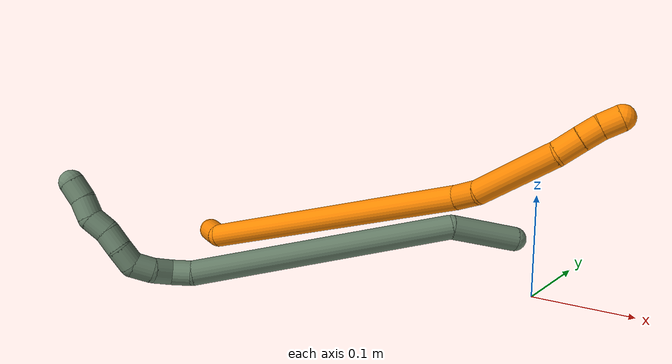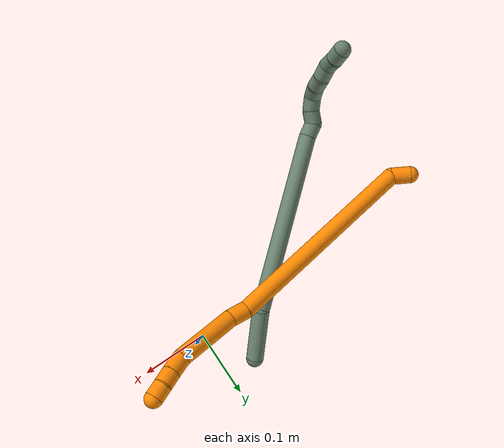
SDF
<sdf version="1.7">
 <world name="default">
  <model name="17">
   <static>0</static>
   <link name="17">
    <collision name="collision-cylinder-e_1_1_4">
     <pose>-0.018064 -0.019508 0.024901 0.664532 -0.518869 -0.182659</pose>
     <geometry><cylinder><radius>0.0125</radius><length>0.072855</length></cylinder></geometry>
     <surface>
      <friction><ode><mu>1.16</mu><mu2>1.16</mu2><slip1>0</slip1><slip2>0</slip2></ode></friction>
      <contact><ode><kp>1e+06</kp><kd>1</kd><max_vel>0</max_vel><min_depth>0.001</min_depth></ode></contact>
     </surface>
    </collision>
    <visual name="visual-cylinder-e_1_1_4">
     <pose>-0.018064 -0.019508 0.024901 0.664532 -0.518869 -0.182659</pose>
     <geometry><cylinder><radius>0.0125</radius><length>0.072855</length></cylinder></geometry>
     <material><ambient>0.415686 0.509804 0.423529 1</ambient></material>
    </visual>
    <collision name="collision-cylinder-e_2_4_5">
     <pose>-0.049562 -0.123541 0.1508 0.696848 -0.101651 -0.036952</pose>
     <geometry><cylinder><radius>0.0125</radius><length>0.264767</length></cylinder></geometry>
     <surface>
      <friction><ode><mu>1.16</mu><mu2>1.16</mu2><slip1>0</slip1><slip2>0</slip2></ode></friction>
      <contact><ode><kp>1e+06</kp><kd>1</kd><max_vel>0</max_vel><min_depth>0.001</min_depth></ode></contact>
     </surface>
    </collision>
    <visual name="visual-cylinder-e_2_4_5">
     <pose>-0.049562 -0.123541 0.1508 0.696848 -0.101651 -0.036952</pose>
     <geometry><cylinder><radius>0.0125</radius><length>0.264767</length></cylinder></geometry>
     <material><ambient>0.415686 0.509804 0.423529 1</ambient></material>
    </visual>
    <collision name="collision-cylinder-e_3_5_6">
     <pose>-0.065427 -0.216199 0.25811 0.910604 -0.23193 -0.113944</pose>
     <geometry><cylinder><radius>0.0125</radius><length>0.021157</length></cylinder></geometry>
     <surface>
      <friction><ode><mu>1.16</mu><mu2>1.16</mu2><slip1>0</slip1><slip2>0</slip2></ode></friction>
      <contact><ode><kp>1e+06</kp><kd>1</kd><max_vel>0</max_vel><min_depth>0.001</min_depth></ode></contact>
     </surface>
    </collision>
    <visual name="visual-cylinder-e_3_5_6">
     <pose>-0.065427 -0.216199 0.25811 0.910604 -0.23193 -0.113944</pose>
     <geometry><cylinder><radius>0.0125</radius><length>0.021157</length></cylinder></geometry>
     <material><ambient>0.415686 0.509804 0.423529 1</ambient></material>
    </visual>
    <collision name="collision-cylinder-e_4_6_7">
     <pose>-0.073626 -0.22687 0.272406 0.307994 -0.602976 -0.096466</pose>
     <geometry><cylinder><radius>0.0125</radius><length>0.020339</length></cylinder></geometry>
     <surface>
      <friction><ode><mu>1.16</mu><mu2>1.16</mu2><slip1>0</slip1><slip2>0</slip2></ode></friction>
      <contact><ode><kp>1e+06</kp><kd>1</kd><max_vel>0</max_vel><min_depth>0.001</min_depth></ode></contact>
     </surface>
    </collision>
    <visual name="visual-cylinder-e_4_6_7">
     <pose>-0.073626 -0.22687 0.272406 0.307994 -0.602976 -0.096466</pose>
     <geometry><cylinder><radius>0.0125</radius><length>0.020339</length></cylinder></geometry>
     <material><ambient>0.415686 0.509804 0.423529 1</ambient></material>
    </visual>
    <collision name="collision-cylinder-e_5_7_8">
     <pose>-0.085516 -0.234697 0.286626 0.70311 -0.642699 -0.242998</pose>
     <geometry><cylinder><radius>0.0125</radius><length>0.020431</length></cylinder></geometry>
     <surface>
      <friction><ode><mu>1.16</mu><mu2>1.16</mu2><slip1>0</slip1><slip2>0</slip2></ode></friction>
      <contact><ode><kp>1e+06</kp><kd>1</kd><max_vel>0</max_vel><min_depth>0.001</min_depth></ode></contact>
     </surface>
    </collision>
    <visual name="visual-cylinder-e_5_7_8">
     <pose>-0.085516 -0.234697 0.286626 0.70311 -0.642699 -0.242998</pose>
     <geometry><cylinder><radius>0.0125</radius><length>0.020431</length></cylinder></geometry>
     <material><ambient>0.415686 0.509804 0.423529 1</ambient></material>
    </visual>
    <collision name="collision-cylinder-e_6_8_9">
     <pose>-0.100661 -0.244229 0.293706 1.37514 -1.12358 -0.954212</pose>
     <geometry><cylinder><radius>0.0125</radius><length>0.020012</length></cylinder></geometry>
     <surface>
      <friction><ode><mu>1.16</mu><mu2>1.16</mu2><slip1>0</slip1><slip2>0</slip2></ode></friction>
      <contact><ode><kp>1e+06</kp><kd>1</kd><max_vel>0</max_vel><min_depth>0.001</min_depth></ode></contact>
     </surface>
    </collision>
    <visual name="visual-cylinder-e_6_8_9">
     <pose>-0.100661 -0.244229 0.293706 1.37514 -1.12358 -0.954212</pose>
     <geometry><cylinder><radius>0.0125</radius><length>0.020012</length></cylinder></geometry>
     <material><ambient>0.415686 0.509804 0.423529 1</ambient></material>
    </visual>
    <collision name="collision-cylinder-e_7_9_10">
     <pose>-0.118056 -0.25421 0.294398 1.59669 -0.969968 -0.991481</pose>
     <geometry><cylinder><radius>0.0125</radius><length>0.020301</length></cylinder></geometry>
     <surface>
      <friction><ode><mu>1.16</mu><mu2>1.16</mu2><slip1>0</slip1><slip2>0</slip2></ode></friction>
      <contact><ode><kp>1e+06</kp><kd>1</kd><max_vel>0</max_vel><min_depth>0.001</min_depth></ode></contact>
     </surface>
    </collision>
    <visual name="visual-cylinder-e_7_9_10">
     <pose>-0.118056 -0.25421 0.294398 1.59669 -0.969968 -0.991481</pose>
     <geometry><cylinder><radius>0.0125</radius><length>0.020301</length></cylinder></geometry>
     <material><ambient>0.415686 0.509804 0.423529 1</ambient></material>
    </visual>
    <collision name="collision-cylinder-e_8_10_11">
     <pose>-0.133729 -0.266584 0.29625 1.27812 -0.811198 -0.617752</pose>
     <geometry><cylinder><radius>0.0125</radius><length>0.020136</length></cylinder></geometry>
     <surface>
      <friction><ode><mu>1.16</mu><mu2>1.16</mu2><slip1>0</slip1><slip2>0</slip2></ode></friction>
      <contact><ode><kp>1e+06</kp><kd>1</kd><max_vel>0</max_vel><min_depth>0.001</min_depth></ode></contact>
     </surface>
    </collision>
    <visual name="visual-cylinder-e_8_10_11">
     <pose>-0.133729 -0.266584 0.29625 1.27812 -0.811198 -0.617752</pose>
     <geometry><cylinder><radius>0.0125</radius><length>0.020136</length></cylinder></geometry>
     <material><ambient>0.415686 0.509804 0.423529 1</ambient></material>
    </visual>
    <collision name="collision-cylinder-e_9_11_12">
     <pose>-0.149067 -0.278636 0.295781 1.99871 -0.933514 -1.32939</pose>
     <geometry><cylinder><radius>0.0125</radius><length>0.02</length></cylinder></geometry>
     <surface>
      <friction><ode><mu>1.16</mu><mu2>1.16</mu2><slip1>0</slip1><slip2>0</slip2></ode></friction>
      <contact><ode><kp>1e+06</kp><kd>1</kd><max_vel>0</max_vel><min_depth>0.001</min_depth></ode></contact>
     </surface>
    </collision>
    <visual name="visual-cylinder-e_9_11_12">
     <pose>-0.149067 -0.278636 0.295781 1.99871 -0.933514 -1.32939</pose>
     <geometry><cylinder><radius>0.0125</radius><length>0.02</length></cylinder></geometry>
     <material><ambient>0.415686 0.509804 0.423529 1</ambient></material>
    </visual>
    <collision name="collision-cylinder-e_10_12_2">
     <pose>-0.164992 -0.290141 0.292481 1.7064 -0.90878 -1.02045</pose>
     <geometry><cylinder><radius>0.0125</radius><length>0.020002</length></cylinder></geometry>
     <surface>
      <friction><ode><mu>1.16</mu><mu2>1.16</mu2><slip1>0</slip1><slip2>0</slip2></ode></friction>
      <contact><ode><kp>1e+06</kp><kd>1</kd><max_vel>0</max_vel><min_depth>0.001</min_depth></ode></contact>
     </surface>
    </collision>
    <visual name="visual-cylinder-e_10_12_2">
     <pose>-0.164992 -0.290141 0.292481 1.7064 -0.90878 -1.02045</pose>
     <geometry><cylinder><radius>0.0125</radius><length>0.020002</length></cylinder></geometry>
     <material><ambient>0.415686 0.509804 0.423529 1</ambient></material>
    </visual>
    <collision name="collision-sphere-2">
     <pose>-0.17288 -0.296232 0.29165 0 -0 0</pose>
     <geometry><sphere><radius>0.0125</radius></sphere></geometry>
     <surface>
      <friction><ode><mu>1.16</mu><mu2>1.16</mu2><slip1>0</slip1><slip2>0</slip2></ode></friction>
      <contact><ode><kp>1e+06</kp><kd>1</kd><max_vel>0</max_vel><min_depth>0.001</min_depth></ode></contact>
     </surface>
    </collision>
    <visual name="visual-sphere-2">
     <pose>-0.17288 -0.296232 0.29165 0 -0 0</pose>
     <geometry><sphere><radius>0.0125</radius></sphere></geometry>
     <material><ambient>0.415686 0.509804 0.423529 1</ambient></material>
    </visual>
    <collision name="collision-sphere-12">
     <pose>-0.157104 -0.28405 0.293312 0 -0 0</pose>
     <geometry><sphere><radius>0.0125</radius></sphere></geometry>
     <surface>
      <friction><ode><mu>1.16</mu><mu2>1.16</mu2><slip1>0</slip1><slip2>0</slip2></ode></friction>
      <contact><ode><kp>1e+06</kp><kd>1</kd><max_vel>0</max_vel><min_depth>0.001</min_depth></ode></contact>
     </surface>
    </collision>
    <visual name="visual-sphere-12">
     <pose>-0.157104 -0.28405 0.293312 0 -0 0</pose>
     <geometry><sphere><radius>0.0125</radius></sphere></geometry>
     <material><ambient>0.415686 0.509804 0.423529 1</ambient></material>
    </visual>
    <collision name="collision-sphere-11">
     <pose>-0.141029 -0.273223 0.29825 0 -0 0</pose>
     <geometry><sphere><radius>0.0125</radius></sphere></geometry>
     <surface>
      <friction><ode><mu>1.16</mu><mu2>1.16</mu2><slip1>0</slip1><slip2>0</slip2></ode></friction>
      <contact><ode><kp>1e+06</kp><kd>1</kd><max_vel>0</max_vel><min_depth>0.001</min_depth></ode></contact>
     </surface>
    </collision>
    <visual name="visual-sphere-11">
     <pose>-0.141029 -0.273223 0.29825 0 -0 0</pose>
     <geometry><sphere><radius>0.0125</radius></sphere></geometry>
     <material><ambient>0.415686 0.509804 0.423529 1</ambient></material>
    </visual>
    <collision name="collision-sphere-10">
     <pose>-0.126428 -0.259946 0.29425 0 -0 0</pose>
     <geometry><sphere><radius>0.0125</radius></sphere></geometry>
     <surface>
      <friction><ode><mu>1.16</mu><mu2>1.16</mu2><slip1>0</slip1><slip2>0</slip2></ode></friction>
      <contact><ode><kp>1e+06</kp><kd>1</kd><max_vel>0</max_vel><min_depth>0.001</min_depth></ode></contact>
     </surface>
    </collision>
    <visual name="visual-sphere-10">
     <pose>-0.126428 -0.259946 0.29425 0 -0 0</pose>
     <geometry><sphere><radius>0.0125</radius></sphere></geometry>
     <material><ambient>0.415686 0.509804 0.423529 1</ambient></material>
    </visual>
    <collision name="collision-sphere-9">
     <pose>-0.109683 -0.248473 0.294547 0 -0 0</pose>
     <geometry><sphere><radius>0.0125</radius></sphere></geometry>
     <surface>
      <friction><ode><mu>1.16</mu><mu2>1.16</mu2><slip1>0</slip1><slip2>0</slip2></ode></friction>
      <contact><ode><kp>1e+06</kp><kd>1</kd><max_vel>0</max_vel><min_depth>0.001</min_depth></ode></contact>
     </surface>
    </collision>
    <visual name="visual-sphere-9">
     <pose>-0.109683 -0.248473 0.294547 0 -0 0</pose>
     <geometry><sphere><radius>0.0125</radius></sphere></geometry>
     <material><ambient>0.415686 0.509804 0.423529 1</ambient></material>
    </visual>
    <collision name="collision-sphere-4">
     <pose>-0.036128 -0.039015 0.049803 0 -0 0</pose>
     <geometry><sphere><radius>0.0125</radius></sphere></geometry>
     <surface>
      <friction><ode><mu>1.16</mu><mu2>1.16</mu2><slip1>0</slip1><slip2>0</slip2></ode></friction>
      <contact><ode><kp>1e+06</kp><kd>1</kd><max_vel>0</max_vel><min_depth>0.001</min_depth></ode></contact>
     </surface>
    </collision>
    <visual name="visual-sphere-4">
     <pose>-0.036128 -0.039015 0.049803 0 -0 0</pose>
     <geometry><sphere><radius>0.0125</radius></sphere></geometry>
     <material><ambient>0.415686 0.509804 0.423529 1</ambient></material>
    </visual>
    <collision name="collision-sphere-1">
     <geometry><sphere><radius>0.0125</radius></sphere></geometry>
     <surface>
      <friction><ode><mu>1.16</mu><mu2>1.16</mu2><slip1>0</slip1><slip2>0</slip2></ode></friction>
      <contact><ode><kp>1e+06</kp><kd>1</kd><max_vel>0</max_vel><min_depth>0.001</min_depth></ode></contact>
     </surface>
    </collision>
    <visual name="visual-sphere-1">
     <geometry><sphere><radius>0.0125</radius></sphere></geometry>
     <material><ambient>0.415686 0.509804 0.423529 1</ambient></material>
    </visual>
    <collision name="collision-sphere-8">
     <pose>-0.091639 -0.239984 0.292864 0 -0 0</pose>
     <geometry><sphere><radius>0.0125</radius></sphere></geometry>
     <surface>
      <friction><ode><mu>1.16</mu><mu2>1.16</mu2><slip1>0</slip1><slip2>0</slip2></ode></friction>
      <contact><ode><kp>1e+06</kp><kd>1</kd><max_vel>0</max_vel><min_depth>0.001</min_depth></ode></contact>
     </surface>
    </collision>
    <visual name="visual-sphere-8">
     <pose>-0.091639 -0.239984 0.292864 0 -0 0</pose>
     <geometry><sphere><radius>0.0125</radius></sphere></geometry>
     <material><ambient>0.415686 0.509804 0.423529 1</ambient></material>
    </visual>
    <collision name="collision-sphere-5">
     <pose>-0.062996 -0.208066 0.251796 0 -0 0</pose>
     <geometry><sphere><radius>0.0125</radius></sphere></geometry>
     <surface>
      <friction><ode><mu>1.16</mu><mu2>1.16</mu2><slip1>0</slip1><slip2>0</slip2></ode></friction>
      <contact><ode><kp>1e+06</kp><kd>1</kd><max_vel>0</max_vel><min_depth>0.001</min_depth></ode></contact>
     </surface>
    </collision>
    <visual name="visual-sphere-5">
     <pose>-0.062996 -0.208066 0.251796 0 -0 0</pose>
     <geometry><sphere><radius>0.0125</radius></sphere></geometry>
     <material><ambient>0.415686 0.509804 0.423529 1</ambient></material>
    </visual>
    <collision name="collision-sphere-6">
     <pose>-0.067859 -0.224331 0.264424 0 -0 0</pose>
     <geometry><sphere><radius>0.0125</radius></sphere></geometry>
     <surface>
      <friction><ode><mu>1.16</mu><mu2>1.16</mu2><slip1>0</slip1><slip2>0</slip2></ode></friction>
      <contact><ode><kp>1e+06</kp><kd>1</kd><max_vel>0</max_vel><min_depth>0.001</min_depth></ode></contact>
     </surface>
    </collision>
    <visual name="visual-sphere-6">
     <pose>-0.067859 -0.224331 0.264424 0 -0 0</pose>
     <geometry><sphere><radius>0.0125</radius></sphere></geometry>
     <material><ambient>0.415686 0.509804 0.423529 1</ambient></material>
    </visual>
    <collision name="collision-sphere-7">
     <pose>-0.079393 -0.229409 0.280388 0 -0 0</pose>
     <geometry><sphere><radius>0.0125</radius></sphere></geometry>
     <surface>
      <friction><ode><mu>1.16</mu><mu2>1.16</mu2><slip1>0</slip1><slip2>0</slip2></ode></friction>
      <contact><ode><kp>1e+06</kp><kd>1</kd><max_vel>0</max_vel><min_depth>0.001</min_depth></ode></contact>
     </surface>
    </collision>
    <visual name="visual-sphere-7">
     <pose>-0.079393 -0.229409 0.280388 0 -0 0</pose>
     <geometry><sphere><radius>0.0125</radius></sphere></geometry>
     <material><ambient>0.415686 0.509804 0.423529 1</ambient></material>
    </visual>
    <inertial>
     <pose>-0.064905 -0.149813 0.176368 0 -0 0</pose>
     <mass>0.5</mass>
     <inertia>
      <ixx>0.001504</ixx>
      <ixy>0</ixy>
      <ixz>0</ixz>
      <iyy>0.001145</iyy>
      <iyz>0</iyz>
      <izz>0.001226</izz>
     </inertia>
    </inertial>
   </link>
   <pose>-0.049604 0.06695 0.03416 -3.03878 1.21106 1.52579</pose>
  </model>
  <model name="19">
   <static>0</static>
   <link name="19">
    <collision name="collision-cylinder-e_1_1_4">
     <pose>0.012731 -0.005889 -0.000743 1.69633 1.13451 1.2514</pose>
     <geometry><cylinder><radius>0.0125</radius><length>0.028093</length></cylinder></geometry>
     <surface>
      <friction><ode><mu>1.16</mu><mu2>1.16</mu2><slip1>0</slip1><slip2>0</slip2></ode></friction>
      <contact><ode><kp>1e+06</kp><kd>1</kd><max_vel>0</max_vel><min_depth>0.001</min_depth></ode></contact>
     </surface>
    </collision>
    <visual name="visual-cylinder-e_1_1_4">
     <pose>0.012731 -0.005889 -0.000743 1.69633 1.13451 1.2514</pose>
     <geometry><cylinder><radius>0.0125</radius><length>0.028093</length></cylinder></geometry>
     <material><ambient>0.996078 0.537255 0 1</ambient></material>
    </visual>
    <collision name="collision-cylinder-e_2_4_5">
     <pose>0.159909 0.003456 0.054669 -0.26491 1.16236 -0.174588</pose>
     <geometry><cylinder><radius>0.0125</radius><length>0.292995</length></cylinder></geometry>
     <surface>
      <friction><ode><mu>1.16</mu><mu2>1.16</mu2><slip1>0</slip1><slip2>0</slip2></ode></friction>
      <contact><ode><kp>1e+06</kp><kd>1</kd><max_vel>0</max_vel><min_depth>0.001</min_depth></ode></contact>
     </surface>
    </collision>
    <visual name="visual-cylinder-e_2_4_5">
     <pose>0.159909 0.003456 0.054669 -0.26491 1.16236 -0.174588</pose>
     <geometry><cylinder><radius>0.0125</radius><length>0.292995</length></cylinder></geometry>
     <material><ambient>0.996078 0.537255 0 1</ambient></material>
    </visual>
    <collision name="collision-cylinder-e_3_5_6">
     <pose>0.306093 0.016665 0.115846 0.38332 1.13859 0.247098</pose>
     <geometry><cylinder><radius>0.0125</radius><length>0.025851</length></cylinder></geometry>
     <surface>
      <friction><ode><mu>1.16</mu><mu2>1.16</mu2><slip1>0</slip1><slip2>0</slip2></ode></friction>
      <contact><ode><kp>1e+06</kp><kd>1</kd><max_vel>0</max_vel><min_depth>0.001</min_depth></ode></contact>
     </surface>
    </collision>
    <visual name="visual-cylinder-e_3_5_6">
     <pose>0.306093 0.016665 0.115846 0.38332 1.13859 0.247098</pose>
     <geometry><cylinder><radius>0.0125</radius><length>0.025851</length></cylinder></geometry>
     <material><ambient>0.996078 0.537255 0 1</ambient></material>
    </visual>
    <collision name="collision-cylinder-e_4_6_7">
     <pose>0.353253 0.012096 0.147095 0.096684 0.931217 0.048607</pose>
     <geometry><cylinder><radius>0.0125</radius><length>0.0883</length></cylinder></geometry>
     <surface>
      <friction><ode><mu>1.16</mu><mu2>1.16</mu2><slip1>0</slip1><slip2>0</slip2></ode></friction>
      <contact><ode><kp>1e+06</kp><kd>1</kd><max_vel>0</max_vel><min_depth>0.001</min_depth></ode></contact>
     </surface>
    </collision>
    <visual name="visual-cylinder-e_4_6_7">
     <pose>0.353253 0.012096 0.147095 0.096684 0.931217 0.048607</pose>
     <geometry><cylinder><radius>0.0125</radius><length>0.0883</length></cylinder></geometry>
     <material><ambient>0.996078 0.537255 0 1</ambient></material>
    </visual>
    <collision name="collision-cylinder-e_5_7_8">
     <pose>0.397024 0.011341 0.182224 -0.198327 0.743485 -0.077537</pose>
     <geometry><cylinder><radius>0.0125</radius><length>0.024666</length></cylinder></geometry>
     <surface>
      <friction><ode><mu>1.16</mu><mu2>1.16</mu2><slip1>0</slip1><slip2>0</slip2></ode></friction>
      <contact><ode><kp>1e+06</kp><kd>1</kd><max_vel>0</max_vel><min_depth>0.001</min_depth></ode></contact>
     </surface>
    </collision>
    <visual name="visual-cylinder-e_5_7_8">
     <pose>0.397024 0.011341 0.182224 -0.198327 0.743485 -0.077537</pose>
     <geometry><cylinder><radius>0.0125</radius><length>0.024666</length></cylinder></geometry>
     <material><ambient>0.996078 0.537255 0 1</ambient></material>
    </visual>
    <collision name="collision-cylinder-e_6_8_9">
     <pose>0.412145 0.015007 0.198243 -0.257732 0.743786 -0.101001</pose>
     <geometry><cylinder><radius>0.0125</radius><length>0.020008</length></cylinder></geometry>
     <surface>
      <friction><ode><mu>1.16</mu><mu2>1.16</mu2><slip1>0</slip1><slip2>0</slip2></ode></friction>
      <contact><ode><kp>1e+06</kp><kd>1</kd><max_vel>0</max_vel><min_depth>0.001</min_depth></ode></contact>
     </surface>
    </collision>
    <visual name="visual-cylinder-e_6_8_9">
     <pose>0.412145 0.015007 0.198243 -0.257732 0.743786 -0.101001</pose>
     <geometry><cylinder><radius>0.0125</radius><length>0.020008</length></cylinder></geometry>
     <material><ambient>0.996078 0.537255 0 1</ambient></material>
    </visual>
    <collision name="collision-cylinder-e_7_9_2">
     <pose>0.426529 0.019227 0.211483 -0.365715 0.85976 -0.169161</pose>
     <geometry><cylinder><radius>0.0125</radius><length>0.020087</length></cylinder></geometry>
     <surface>
      <friction><ode><mu>1.16</mu><mu2>1.16</mu2><slip1>0</slip1><slip2>0</slip2></ode></friction>
      <contact><ode><kp>1e+06</kp><kd>1</kd><max_vel>0</max_vel><min_depth>0.001</min_depth></ode></contact>
     </surface>
    </collision>
    <visual name="visual-cylinder-e_7_9_2">
     <pose>0.426529 0.019227 0.211483 -0.365715 0.85976 -0.169161</pose>
     <geometry><cylinder><radius>0.0125</radius><length>0.020087</length></cylinder></geometry>
     <material><ambient>0.996078 0.537255 0 1</ambient></material>
    </visual>
    <collision name="collision-sphere-2">
     <pose>0.434138 0.021571 0.217604 0 -0 0</pose>
     <geometry><sphere><radius>0.0125</radius></sphere></geometry>
     <surface>
      <friction><ode><mu>1.16</mu><mu2>1.16</mu2><slip1>0</slip1><slip2>0</slip2></ode></friction>
      <contact><ode><kp>1e+06</kp><kd>1</kd><max_vel>0</max_vel><min_depth>0.001</min_depth></ode></contact>
     </surface>
    </collision>
    <visual name="visual-sphere-2">
     <pose>0.434138 0.021571 0.217604 0 -0 0</pose>
     <geometry><sphere><radius>0.0125</radius></sphere></geometry>
     <material><ambient>0.996078 0.537255 0 1</ambient></material>
    </visual>
    <collision name="collision-sphere-9">
     <pose>0.418919 0.016883 0.205362 0 -0 0</pose>
     <geometry><sphere><radius>0.0125</radius></sphere></geometry>
     <surface>
      <friction><ode><mu>1.16</mu><mu2>1.16</mu2><slip1>0</slip1><slip2>0</slip2></ode></friction>
      <contact><ode><kp>1e+06</kp><kd>1</kd><max_vel>0</max_vel><min_depth>0.001</min_depth></ode></contact>
     </surface>
    </collision>
    <visual name="visual-sphere-9">
     <pose>0.418919 0.016883 0.205362 0 -0 0</pose>
     <geometry><sphere><radius>0.0125</radius></sphere></geometry>
     <material><ambient>0.996078 0.537255 0 1</ambient></material>
    </visual>
    <collision name="collision-sphere-4">
     <pose>0.025462 -0.011778 -0.001486 0 -0 0</pose>
     <geometry><sphere><radius>0.0125</radius></sphere></geometry>
     <surface>
      <friction><ode><mu>1.16</mu><mu2>1.16</mu2><slip1>0</slip1><slip2>0</slip2></ode></friction>
      <contact><ode><kp>1e+06</kp><kd>1</kd><max_vel>0</max_vel><min_depth>0.001</min_depth></ode></contact>
     </surface>
    </collision>
    <visual name="visual-sphere-4">
     <pose>0.025462 -0.011778 -0.001486 0 -0 0</pose>
     <geometry><sphere><radius>0.0125</radius></sphere></geometry>
     <material><ambient>0.996078 0.537255 0 1</ambient></material>
    </visual>
    <collision name="collision-sphere-1">
     <geometry><sphere><radius>0.0125</radius></sphere></geometry>
     <surface>
      <friction><ode><mu>1.16</mu><mu2>1.16</mu2><slip1>0</slip1><slip2>0</slip2></ode></friction>
      <contact><ode><kp>1e+06</kp><kd>1</kd><max_vel>0</max_vel><min_depth>0.001</min_depth></ode></contact>
     </surface>
    </collision>
    <visual name="visual-sphere-1">
     <geometry><sphere><radius>0.0125</radius></sphere></geometry>
     <material><ambient>0.996078 0.537255 0 1</ambient></material>
    </visual>
    <collision name="collision-sphere-8">
     <pose>0.405372 0.01313 0.191124 0 -0 0</pose>
     <geometry><sphere><radius>0.0125</radius></sphere></geometry>
     <surface>
      <friction><ode><mu>1.16</mu><mu2>1.16</mu2><slip1>0</slip1><slip2>0</slip2></ode></friction>
      <contact><ode><kp>1e+06</kp><kd>1</kd><max_vel>0</max_vel><min_depth>0.001</min_depth></ode></contact>
     </surface>
    </collision>
    <visual name="visual-sphere-8">
     <pose>0.405372 0.01313 0.191124 0 -0 0</pose>
     <geometry><sphere><radius>0.0125</radius></sphere></geometry>
     <material><ambient>0.996078 0.537255 0 1</ambient></material>
    </visual>
    <collision name="collision-sphere-5">
     <pose>0.294356 0.01869 0.110825 0 -0 0</pose>
     <geometry><sphere><radius>0.0125</radius></sphere></geometry>
     <surface>
      <friction><ode><mu>1.16</mu><mu2>1.16</mu2><slip1>0</slip1><slip2>0</slip2></ode></friction>
      <contact><ode><kp>1e+06</kp><kd>1</kd><max_vel>0</max_vel><min_depth>0.001</min_depth></ode></contact>
     </surface>
    </collision>
    <visual name="visual-sphere-5">
     <pose>0.294356 0.01869 0.110825 0 -0 0</pose>
     <geometry><sphere><radius>0.0125</radius></sphere></geometry>
     <material><ambient>0.996078 0.537255 0 1</ambient></material>
    </visual>
    <collision name="collision-sphere-6">
     <pose>0.317829 0.01464 0.120867 0 -0 0</pose>
     <geometry><sphere><radius>0.0125</radius></sphere></geometry>
     <surface>
      <friction><ode><mu>1.16</mu><mu2>1.16</mu2><slip1>0</slip1><slip2>0</slip2></ode></friction>
      <contact><ode><kp>1e+06</kp><kd>1</kd><max_vel>0</max_vel><min_depth>0.001</min_depth></ode></contact>
     </surface>
    </collision>
    <visual name="visual-sphere-6">
     <pose>0.317829 0.01464 0.120867 0 -0 0</pose>
     <geometry><sphere><radius>0.0125</radius></sphere></geometry>
     <material><ambient>0.996078 0.537255 0 1</ambient></material>
    </visual>
    <collision name="collision-sphere-7">
     <pose>0.388677 0.009553 0.173323 0 -0 0</pose>
     <geometry><sphere><radius>0.0125</radius></sphere></geometry>
     <surface>
      <friction><ode><mu>1.16</mu><mu2>1.16</mu2><slip1>0</slip1><slip2>0</slip2></ode></friction>
      <contact><ode><kp>1e+06</kp><kd>1</kd><max_vel>0</max_vel><min_depth>0.001</min_depth></ode></contact>
     </surface>
    </collision>
    <visual name="visual-sphere-7">
     <pose>0.388677 0.009553 0.173323 0 -0 0</pose>
     <geometry><sphere><radius>0.0125</radius></sphere></geometry>
     <material><ambient>0.996078 0.537255 0 1</ambient></material>
    </visual>
    <inertial>
     <pose>0.225844 0.006624 0.089379 0 -0 0</pose>
     <mass>0.5</mass>
     <inertia>
      <ixx>0.000757</ixx>
      <ixy>0</ixy>
      <ixz>0</ixz>
      <iyy>0.002021</iyy>
      <iyz>0</iyz>
      <izz>-0.002189</izz>
     </inertia>
    </inertial>
   </link>
   <pose>-0.387853 -0.028269 0.013073 -0.313105 0.08482 -0.080473</pose>
  </model>
 </world>
</sdf>
